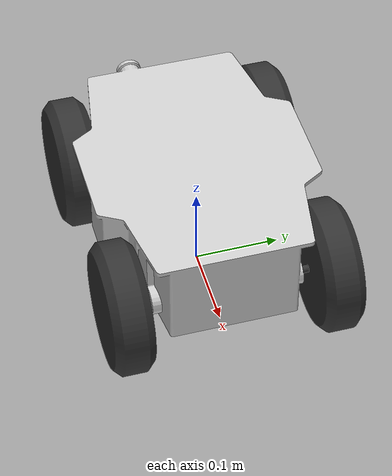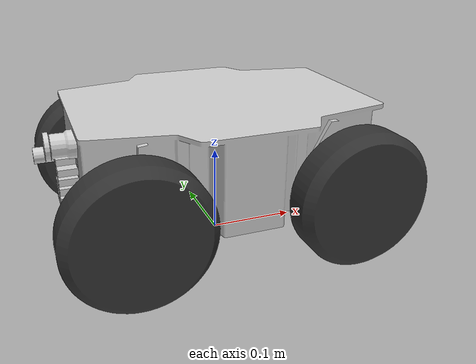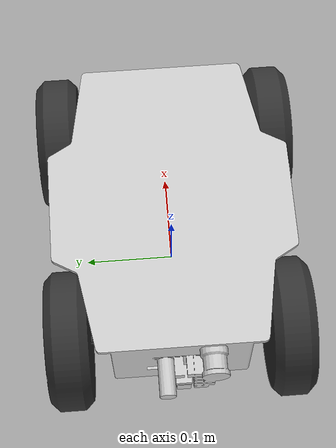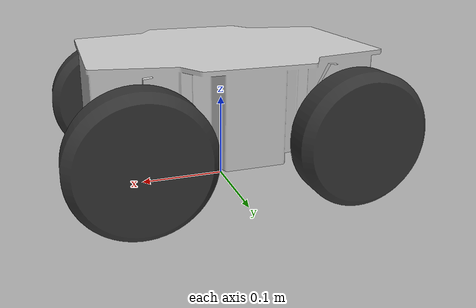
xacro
<?xml version="1.0" ?>
<robot name="mecanum3" xmlns:xacro="http://www.ros.org/wiki/xacro">

<xacro:include filename="$(find mecanumrover_description)/urdf/materials.xacro" />
<!-- OPTION: LRF TG30 -->

<link name="base_footprint" />

<joint name="base_joint" type="fixed">
  <parent link="base_footprint"/>
  <child link="base_link" />
  <origin xyz="0 0 0" rpy="0 0 ${radians(-90)}"/>
</joint>

<link name="base_link">
  <inertial>
    <origin xyz="8.039076182406018e-05 -0.001484050423595346 0.11040223412633365" rpy="0 0 0"/>
    <mass value="51.54953324093924"/>
    <inertia ixx="0.451406" iyy="0.211369" izz="0.557559" ixy="0.000784" iyz="0.000199" ixz="-0.000134"/>
  </inertial>
  <visual>
    <origin xyz="0 0 0" rpy="0 0 0"/>
    <geometry>
      <mesh filename="package://mecanumrover_description/meshes/base_link.stl" scale="0.001 0.001 0.001"/>
    </geometry>
    <material name="silver"/>
  </visual>
  <collision>
    <origin xyz="0 0 0" rpy="0 0 0"/>
    <geometry>
      <mesh filename="package://mecanumrover_description/meshes/base_link.stl" scale="0.001 0.001 0.001"/>
    </geometry>
  </collision>
</link>

<link name="front_left_wheel_1">
  <inertial>
    <origin xyz="-0.03247844667661433 -1.7208456881689926e-15 1.3877787807814457e-17" rpy="0 0 0"/>
    <mass value="6.210672529256712"/>
    <inertia ixx="0.017207" iyy="0.009618" izz="0.009618" ixy="0.0" iyz="0.0" ixz="-0.0"/>
  </inertial>
  <visual>
    <origin xyz="0.0875 -0.12 -0.076" rpy="0 0 0"/>
    <geometry>
      <mesh filename="package://mecanumrover_description/meshes/front_left_wheel_1.stl" scale="0.001 0.001 0.001"/>
    </geometry>
    <material name="dark_grey"/>
  </visual>
  <collision>
    <origin xyz="0.0875 -0.12 -0.076" rpy="0 0 0"/>
    <geometry>
      <mesh filename="package://mecanumrover_description/meshes/front_left_wheel_1.stl" scale="0.001 0.001 0.001"/>
    </geometry>
  </collision>
</link>

<link name="front_right_wheel_1">
  <inertial>
    <origin xyz="0.032478446676614314 -3.7470027081099033e-16 1.3877787807814457e-17" rpy="0 0 0"/>
    <mass value="6.210672529256714"/>
    <inertia ixx="0.017207" iyy="0.009618" izz="0.009618" ixy="-0.0" iyz="0.0" ixz="0.0"/>
  </inertial>
  <visual>
    <origin xyz="-0.0875 -0.12 -0.076" rpy="0 0 0"/>
    <geometry>
      <mesh filename="package://mecanumrover_description/meshes/front_right_wheel_1.stl" scale="0.001 0.001 0.001"/>
    </geometry>
    <material name="dark_grey"/>
  </visual>
  <collision>
    <origin xyz="-0.0875 -0.12 -0.076" rpy="0 0 0"/>
    <geometry>
      <mesh filename="package://mecanumrover_description/meshes/front_right_wheel_1.stl" scale="0.001 0.001 0.001"/>
    </geometry>
  </collision>
</link>

<link name="back_right_wheel_1">
  <inertial>
    <origin xyz="0.03247844667661433 1.7208456881689926e-15 1.3877787807814457e-17" rpy="0 0 0"/>
    <mass value="6.210672529256712"/>
    <inertia ixx="0.017207" iyy="0.009618" izz="0.009618" ixy="0.0" iyz="0.0" ixz="0.0"/>
  </inertial>
  <visual>
    <origin xyz="-0.0875 0.12 -0.076" rpy="0 0 0"/>
    <geometry>
      <mesh filename="package://mecanumrover_description/meshes/back_right_wheel_1.stl" scale="0.001 0.001 0.001"/>
    </geometry>
    <material name="dark_grey"/>
  </visual>
  <collision>
    <origin xyz="-0.0875 0.12 -0.076" rpy="0 0 0"/>
    <geometry>
      <mesh filename="package://mecanumrover_description/meshes/back_right_wheel_1.stl" scale="0.001 0.001 0.001"/>
    </geometry>
  </collision>
</link>

<link name="back_left_wheel_1">
  <inertial>
    <origin xyz="-0.03247844667661433 3.7470027081099033e-16 0.0" rpy="0 0 0"/>
    <mass value="6.210672529256715"/>
    <inertia ixx="0.017207" iyy="0.009618" izz="0.009618" ixy="-0.0" iyz="0.0" ixz="0.0"/>
  </inertial>
  <visual>
    <origin xyz="0.0875 0.12 -0.076" rpy="0 0 0"/>
    <geometry>
      <mesh filename="package://mecanumrover_description/meshes/back_left_wheel_1.stl" scale="0.001 0.001 0.001"/>
    </geometry>
    <material name="dark_grey"/>
  </visual>
  <collision>
    <origin xyz="0.0875 0.12 -0.076" rpy="0 0 0"/>
    <geometry>
      <mesh filename="package://mecanumrover_description/meshes/back_left_wheel_1.stl" scale="0.001 0.001 0.001"/>
    </geometry>
  </collision>
</link>

<joint name="front_left_joint" type="continuous">
  <origin xyz="-0.0875 0.12 0.076" rpy="0 0 0"/>
  <parent link="base_link"/>
  <child link="front_left_wheel_1"/>
  <axis xyz="-1.0 0.0 0.0"/>
</joint>

<joint name="front_right_joint" type="continuous">
  <origin xyz="0.0875 0.12 0.076" rpy="0 0 0"/>
  <parent link="base_link"/>
  <child link="front_right_wheel_1"/>
  <axis xyz="1.0 0.0 0.0"/>
</joint>

<joint name="back_right_joint" type="continuous">
  <origin xyz="0.0875 -0.12 0.076" rpy="0 0 0"/>
  <parent link="base_link"/>
  <child link="back_right_wheel_1"/>
  <axis xyz="1.0 0.0 0.0"/>
</joint>

<joint name="back_left_joint" type="continuous">
  <origin xyz="-0.0875 -0.12 0.076" rpy="0 0 0"/>
  <parent link="base_link"/>
  <child link="back_left_wheel_1"/>
  <axis xyz="-1.0 0.0 0.0"/>
</joint>

</robot>

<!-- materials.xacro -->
<robot name="materials" xmlns:xacro="http://www.ros.org/wiki/xacro">

  <material name="silver">
    <color rgba="0.800 0.800 0.800 1.000" />
  </material>

  <material name="dark_silver">
    <color rgba="0.400 0.400 0.400 1.000" />
  </material>

  <material name="dark_grey">
    <color rgba="0.200 0.200 0.200 1.000" />
  </material>

  <material name="black">
    <color rgba="0.100 0.100 0.100 1.000" />
  </material>

</robot>
